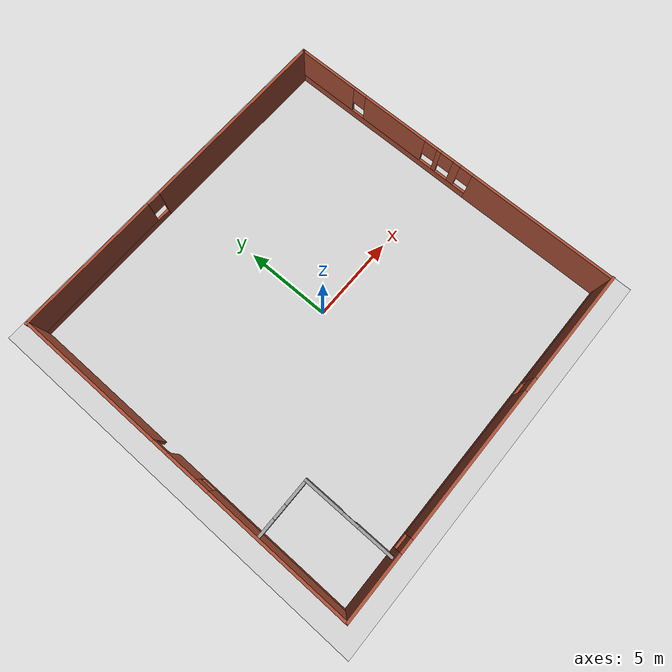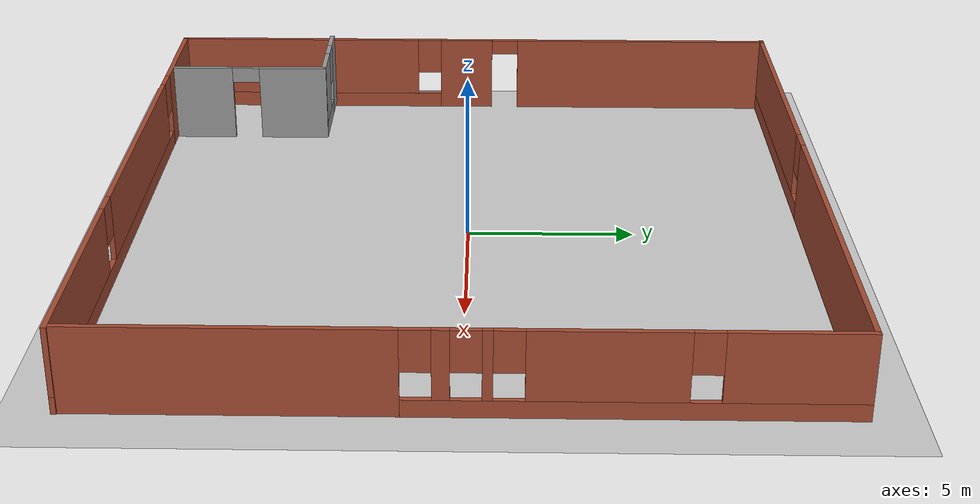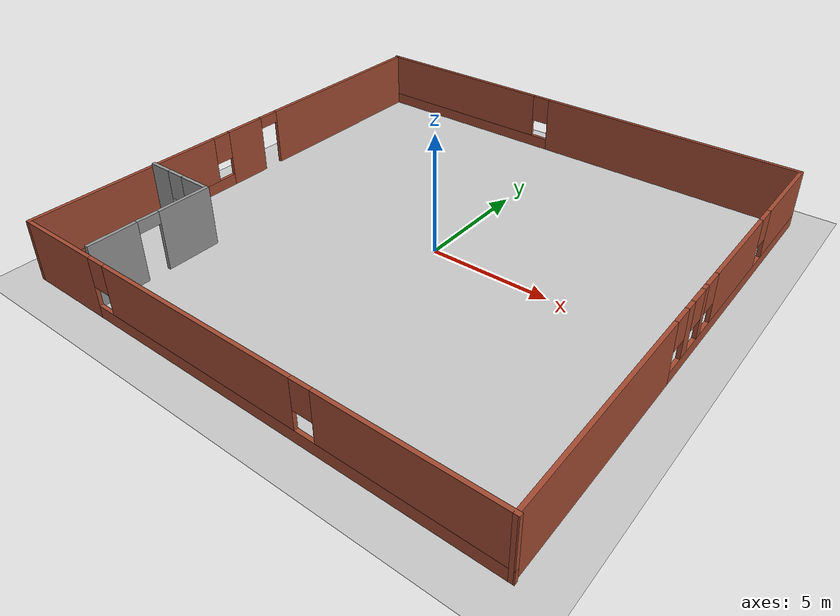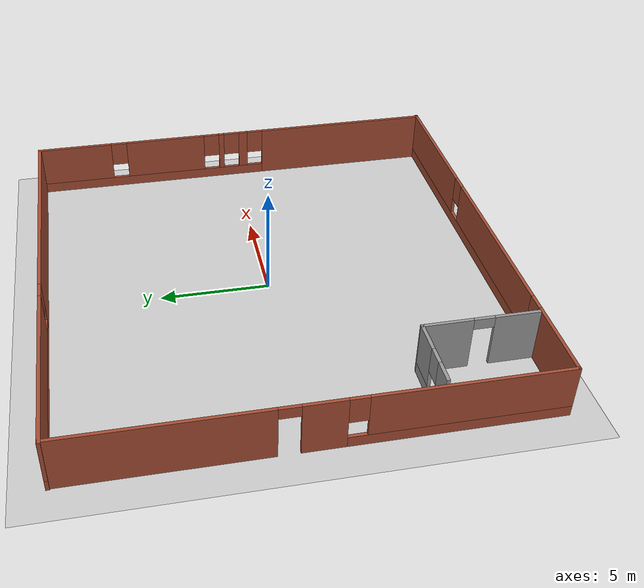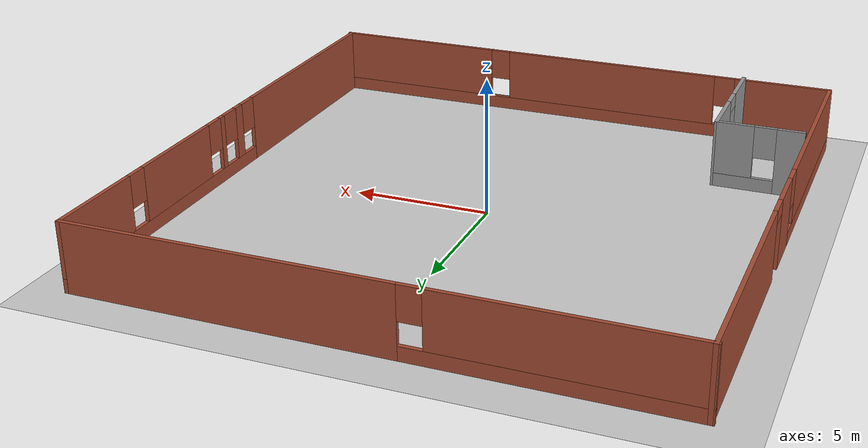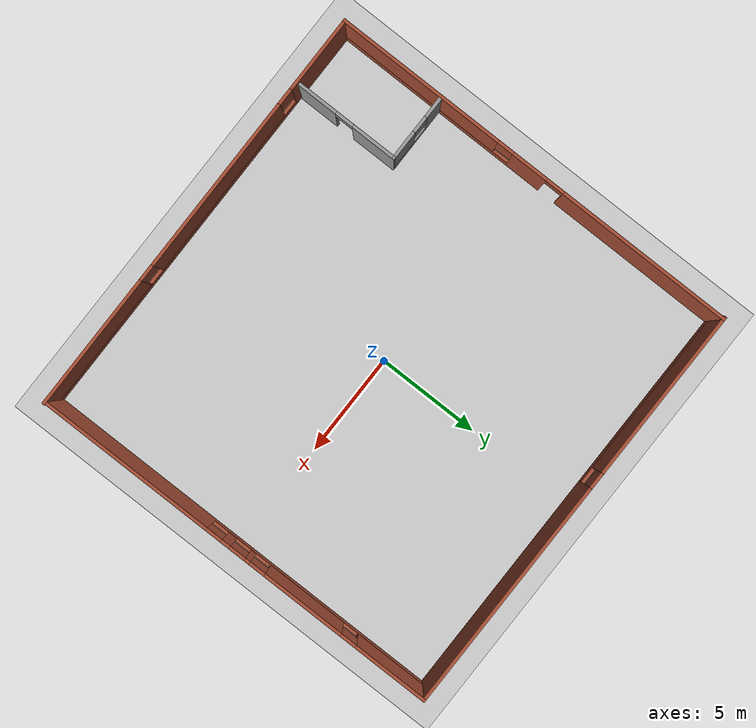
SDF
<sdf version="1.7">
 <world name="default">
  <model name="ground_plane">
   <static>1</static>
   <link name="link">
    <collision name="collision">
     <geometry><plane><normal>0 0 1</normal><size>100 100</size></plane></geometry>
     <surface>
      <contact><collide_bitmask>65535</collide_bitmask></contact>
      <friction><ode><mu>100</mu><mu2>50</mu2></ode></friction>
     </surface>
    </collision>
    <visual name="visual">
     <cast_shadows>0</cast_shadows>
     <geometry><plane><normal>0 0 1</normal><size>100 100</size></plane></geometry>
     <material>
      <script><uri>file://media/materials/scripts/gazebo.material</uri><name>Gazebo/Grey</name></script>
     </material>
    </visual>
   </link>
  </model>
  <model name="Walls">
   <pose>-0.030851 -0.016083 0 0 -0 0</pose>
   <link name="Wall_43">
    <pose>-10.226 0 0 0 -0 -1.57109</pose>
    <visual name="Wall_43_Visual_0">
     <pose>-5.91084 0 1.25 0 -0 0</pose>
     <geometry><box><size>8.66644 0.15 2.5</size></box></geometry>
     <material>
      <script><uri>file://media/materials/scripts/gazebo.material</uri><name>Gazebo/Bricks</name></script>
      <ambient>0.388235 0.270588 0.172549 1</ambient>
     </material>
     <meta><layer>0</layer></meta>
    </visual>
    <collision name="Wall_43_Collision_0">
     <geometry><box><size>8.66644 0.15 2.5</size></box></geometry>
     <pose>-5.91084 0 1.25 0 -0 0</pose>
    </collision>
    <visual name="Wall_43_Visual_1">
     <pose>0.223322 0 1.25 0 -0 0</pose>
     <geometry><box><size>1.80188 0.15 2.5</size></box></geometry>
     <material>
      <script><uri>file://media/materials/scripts/gazebo.material</uri><name>Gazebo/Bricks</name></script>
      <ambient>0.388235 0.270588 0.172549 1</ambient>
     </material>
     <meta><layer>0</layer></meta>
    </visual>
    <collision name="Wall_43_Collision_1">
     <geometry><box><size>1.80188 0.15 2.5</size></box></geometry>
     <pose>0.223322 0 1.25 0 -0 0</pose>
    </collision>
    <visual name="Wall_43_Visual_2">
     <pose>5.68416 0 0.25 0 -0 0</pose>
     <geometry><box><size>9.1198 0.15 0.5</size></box></geometry>
     <material>
      <script><uri>file://media/materials/scripts/gazebo.material</uri><name>Gazebo/Bricks</name></script>
      <ambient>0.388235 0.270588 0.172549 1</ambient>
     </material>
     <meta><layer>0</layer></meta>
    </visual>
    <collision name="Wall_43_Collision_2">
     <geometry><box><size>9.1198 0.15 0.5</size></box></geometry>
     <pose>5.68416 0 0.25 0 -0 0</pose>
    </collision>
    <visual name="Wall_43_Visual_3">
     <pose>6.08416 0 1.5 0 -0 0</pose>
     <geometry><box><size>8.3198 0.15 2</size></box></geometry>
     <material>
      <script><uri>file://media/materials/scripts/gazebo.material</uri><name>Gazebo/Bricks</name></script>
      <ambient>0.388235 0.270588 0.172549 1</ambient>
     </material>
     <meta><layer>0</layer></meta>
    </visual>
    <collision name="Wall_43_Collision_3">
     <geometry><box><size>8.3198 0.15 2</size></box></geometry>
     <pose>6.08416 0 1.5 0 -0 0</pose>
    </collision>
    <visual name="Wall_43_Visual_4">
     <pose>1.52426 0 1.9 0 -0 0</pose>
     <geometry><box><size>0.8 0.15 1.2</size></box></geometry>
     <material>
      <script><uri>file://media/materials/scripts/gazebo.material</uri><name>Gazebo/Bricks</name></script>
      <ambient>0.388235 0.270588 0.172549 1</ambient>
     </material>
     <meta><layer>0</layer></meta>
    </visual>
    <collision name="Wall_43_Collision_4">
     <geometry><box><size>0.8 0.15 1.2</size></box></geometry>
     <pose>1.52426 0 1.9 0 -0 0</pose>
    </collision>
    <visual name="Wall_43_Visual_5">
     <pose>-1.12762 0 2.25 0 -0 0</pose>
     <geometry><box><size>0.9 0.15 0.5</size></box></geometry>
     <material>
      <script><uri>file://media/materials/scripts/gazebo.material</uri><name>Gazebo/Bricks</name></script>
      <ambient>0.388235 0.270588 0.172549 1</ambient>
     </material>
     <meta><layer>0</layer></meta>
    </visual>
    <collision name="Wall_43_Collision_5">
     <geometry><box><size>0.9 0.15 0.5</size></box></geometry>
     <pose>-1.12762 0 2.25 0 -0 0</pose>
    </collision>
   </link>
   <link name="Wall_44">
    <pose>0.04349 -10.1688 0 0 -0 0</pose>
    <visual name="Wall_44_Visual_0">
     <pose>-8.4495 0 1.25 0 -0 0</pose>
     <geometry><box><size>3.70301 0.15 2.5</size></box></geometry>
     <material>
      <script><uri>file://media/materials/scripts/gazebo.material</uri><name>Gazebo/Bricks</name></script>
      <ambient>0.388235 0.270588 0.172549 1</ambient>
     </material>
     <meta><layer>0</layer></meta>
    </visual>
    <collision name="Wall_44_Collision_0">
     <geometry><box><size>3.70301 0.15 2.5</size></box></geometry>
     <pose>-8.4495 0 1.25 0 -0 0</pose>
    </collision>
    <visual name="Wall_44_Visual_1">
     <pose>1.8515 0 0.25 0 -0 0</pose>
     <geometry><box><size>16.899 0.15 0.5</size></box></geometry>
     <material>
      <script><uri>file://media/materials/scripts/gazebo.material</uri><name>Gazebo/Bricks</name></script>
      <ambient>0.388235 0.270588 0.172549 1</ambient>
     </material>
     <meta><layer>0</layer></meta>
    </visual>
    <collision name="Wall_44_Collision_1">
     <geometry><box><size>16.899 0.15 0.5</size></box></geometry>
     <pose>1.8515 0 0.25 0 -0 0</pose>
    </collision>
    <visual name="Wall_44_Visual_2">
     <pose>-1.47582 0 1.5 0 -0 0</pose>
     <geometry><box><size>8.64435 0.15 2</size></box></geometry>
     <material>
      <script><uri>file://media/materials/scripts/gazebo.material</uri><name>Gazebo/Bricks</name></script>
      <ambient>0.388235 0.270588 0.172549 1</ambient>
     </material>
     <meta><layer>0</layer></meta>
    </visual>
    <collision name="Wall_44_Collision_2">
     <geometry><box><size>8.64435 0.15 2</size></box></geometry>
     <pose>-1.47582 0 1.5 0 -0 0</pose>
    </collision>
    <visual name="Wall_44_Visual_3">
     <pose>6.97368 0 1.5 0 -0 0</pose>
     <geometry><box><size>6.65464 0.15 2</size></box></geometry>
     <material>
      <script><uri>file://media/materials/scripts/gazebo.material</uri><name>Gazebo/Bricks</name></script>
      <ambient>0.388235 0.270588 0.172549 1</ambient>
     </material>
     <meta><layer>0</layer></meta>
    </visual>
    <collision name="Wall_44_Collision_3">
     <geometry><box><size>6.65464 0.15 2</size></box></geometry>
     <pose>6.97368 0 1.5 0 -0 0</pose>
    </collision>
    <visual name="Wall_44_Visual_4">
     <pose>-6.198 0 1.9 0 -0 0</pose>
     <geometry><box><size>0.8 0.15 1.2</size></box></geometry>
     <material>
      <script><uri>file://media/materials/scripts/gazebo.material</uri><name>Gazebo/Bricks</name></script>
      <ambient>0.388235 0.270588 0.172549 1</ambient>
     </material>
     <meta><layer>0</layer></meta>
    </visual>
    <collision name="Wall_44_Collision_4">
     <geometry><box><size>0.8 0.15 1.2</size></box></geometry>
     <pose>-6.198 0 1.9 0 -0 0</pose>
    </collision>
    <visual name="Wall_44_Visual_5">
     <pose>3.24636 0 1.9 0 -0 0</pose>
     <geometry><box><size>0.8 0.15 1.2</size></box></geometry>
     <material>
      <script><uri>file://media/materials/scripts/gazebo.material</uri><name>Gazebo/Bricks</name></script>
      <ambient>0.388235 0.270588 0.172549 1</ambient>
     </material>
     <meta><layer>0</layer></meta>
    </visual>
    <collision name="Wall_44_Collision_5">
     <geometry><box><size>0.8 0.15 1.2</size></box></geometry>
     <pose>3.24636 0 1.9 0 -0 0</pose>
    </collision>
   </link>
   <link name="Wall_45">
    <pose>10.223 0 0 0 -0 1.5708</pose>
    <visual name="Wall_45_Visual_0">
     <pose>-5.87482 0 1.25 0 -0 0</pose>
     <geometry><box><size>8.73851 0.15 2.5</size></box></geometry>
     <material>
      <script><uri>file://media/materials/scripts/gazebo.material</uri><name>Gazebo/Bricks</name></script>
      <ambient>0.388235 0.270588 0.172549 1</ambient>
     </material>
     <meta><layer>0</layer></meta>
    </visual>
    <collision name="Wall_45_Collision_0">
     <geometry><box><size>8.73851 0.15 2.5</size></box></geometry>
     <pose>-5.87482 0 1.25 0 -0 0</pose>
    </collision>
    <visual name="Wall_45_Visual_1">
     <pose>4.36925 0 0.25 0 -0 0</pose>
     <geometry><box><size>11.7496 0.15 0.5</size></box></geometry>
     <material>
      <script><uri>file://media/materials/scripts/gazebo.material</uri><name>Gazebo/Bricks</name></script>
      <ambient>0.388235 0.270588 0.172549 1</ambient>
     </material>
     <meta><layer>0</layer></meta>
    </visual>
    <collision name="Wall_45_Collision_1">
     <geometry><box><size>11.7496 0.15 0.5</size></box></geometry>
     <pose>4.36925 0 0.25 0 -0 0</pose>
    </collision>
    <visual name="Wall_45_Visual_2">
     <pose>-0.477493 0 1.5 0 -0 0</pose>
     <geometry><box><size>0.456146 0.15 2</size></box></geometry>
     <material>
      <script><uri>file://media/materials/scripts/gazebo.material</uri><name>Gazebo/Bricks</name></script>
      <ambient>0.388235 0.270588 0.172549 1</ambient>
     </material>
     <meta><layer>0</layer></meta>
    </visual>
    <collision name="Wall_45_Collision_2">
     <geometry><box><size>0.456146 0.15 2</size></box></geometry>
     <pose>-0.477493 0 1.5 0 -0 0</pose>
    </collision>
    <visual name="Wall_45_Visual_3">
     <pose>0.685605 0 1.5 0 -0 0</pose>
     <geometry><box><size>0.27005 0.15 2</size></box></geometry>
     <material>
      <script><uri>file://media/materials/scripts/gazebo.material</uri><name>Gazebo/Bricks</name></script>
      <ambient>0.388235 0.270588 0.172549 1</ambient>
     </material>
     <meta><layer>0</layer></meta>
    </visual>
    <collision name="Wall_45_Collision_3">
     <geometry><box><size>0.27005 0.15 2</size></box></geometry>
     <pose>0.685605 0 1.5 0 -0 0</pose>
    </collision>
    <visual name="Wall_45_Visual_4">
     <pose>3.66314 0 1.5 0 -0 0</pose>
     <geometry><box><size>4.08501 0.15 2</size></box></geometry>
     <material>
      <script><uri>file://media/materials/scripts/gazebo.material</uri><name>Gazebo/Bricks</name></script>
      <ambient>0.388235 0.270588 0.172549 1</ambient>
     </material>
     <meta><layer>0</layer></meta>
    </visual>
    <collision name="Wall_45_Collision_4">
     <geometry><box><size>4.08501 0.15 2</size></box></geometry>
     <pose>3.66314 0 1.5 0 -0 0</pose>
    </collision>
    <visual name="Wall_45_Visual_5">
     <pose>8.37486 0 1.5 0 -0 0</pose>
     <geometry><box><size>3.73844 0.15 2</size></box></geometry>
     <material>
      <script><uri>file://media/materials/scripts/gazebo.material</uri><name>Gazebo/Bricks</name></script>
      <ambient>0.388235 0.270588 0.172549 1</ambient>
     </material>
     <meta><layer>0</layer></meta>
    </visual>
    <collision name="Wall_45_Collision_5">
     <geometry><box><size>3.73844 0.15 2</size></box></geometry>
     <pose>8.37486 0 1.5 0 -0 0</pose>
    </collision>
    <visual name="Wall_45_Visual_6">
     <pose>-1.10557 0 1.9 0 -0 0</pose>
     <geometry><box><size>0.8 0.15 1.2</size></box></geometry>
     <material>
      <script><uri>file://media/materials/scripts/gazebo.material</uri><name>Gazebo/Bricks</name></script>
      <ambient>0.388235 0.270588 0.172549 1</ambient>
     </material>
     <meta><layer>0</layer></meta>
    </visual>
    <collision name="Wall_45_Collision_6">
     <geometry><box><size>0.8 0.15 1.2</size></box></geometry>
     <pose>-1.10557 0 1.9 0 -0 0</pose>
    </collision>
    <visual name="Wall_45_Visual_7">
     <pose>0.15058 0 1.9 0 -0 0</pose>
     <geometry><box><size>0.8 0.15 1.2</size></box></geometry>
     <material>
      <script><uri>file://media/materials/scripts/gazebo.material</uri><name>Gazebo/Bricks</name></script>
      <ambient>0.388235 0.270588 0.172549 1</ambient>
     </material>
     <meta><layer>0</layer></meta>
    </visual>
    <collision name="Wall_45_Collision_7">
     <geometry><box><size>0.8 0.15 1.2</size></box></geometry>
     <pose>0.15058 0 1.9 0 -0 0</pose>
    </collision>
    <visual name="Wall_45_Visual_8">
     <pose>1.22063 0 1.9 0 -0 0</pose>
     <geometry><box><size>0.8 0.15 1.2</size></box></geometry>
     <material>
      <script><uri>file://media/materials/scripts/gazebo.material</uri><name>Gazebo/Bricks</name></script>
      <ambient>0.388235 0.270588 0.172549 1</ambient>
     </material>
     <meta><layer>0</layer></meta>
    </visual>
    <collision name="Wall_45_Collision_8">
     <geometry><box><size>0.8 0.15 1.2</size></box></geometry>
     <pose>1.22063 0 1.9 0 -0 0</pose>
    </collision>
    <visual name="Wall_45_Visual_9">
     <pose>6.10564 0 1.9 0 -0 0</pose>
     <geometry><box><size>0.8 0.15 1.2</size></box></geometry>
     <material>
      <script><uri>file://media/materials/scripts/gazebo.material</uri><name>Gazebo/Bricks</name></script>
      <ambient>0.388235 0.270588 0.172549 1</ambient>
     </material>
     <meta><layer>0</layer></meta>
    </visual>
    <collision name="Wall_45_Collision_9">
     <geometry><box><size>0.8 0.15 1.2</size></box></geometry>
     <pose>6.10564 0 1.9 0 -0 0</pose>
    </collision>
   </link>
   <link name="Wall_46">
    <pose>-0.046523 10.1688 0 0 -0 3.14159</pose>
    <visual name="Wall_46_Visual_0">
     <pose>-4.59793 0 1.25 0 -0 0</pose>
     <geometry><box><size>11.4001 0.15 2.5</size></box></geometry>
     <material>
      <script><uri>file://media/materials/scripts/gazebo.material</uri><name>Gazebo/Bricks</name></script>
      <ambient>0.388235 0.270588 0.172549 1</ambient>
     </material>
     <meta><layer>0</layer></meta>
    </visual>
    <collision name="Wall_46_Collision_0">
     <geometry><box><size>11.4001 0.15 2.5</size></box></geometry>
     <pose>-4.59793 0 1.25 0 -0 0</pose>
    </collision>
    <visual name="Wall_46_Visual_1">
     <pose>5.70004 0 0.25 0 -0 0</pose>
     <geometry><box><size>9.19585 0.15 0.5</size></box></geometry>
     <material>
      <script><uri>file://media/materials/scripts/gazebo.material</uri><name>Gazebo/Bricks</name></script>
      <ambient>0.388235 0.270588 0.172549 1</ambient>
     </material>
     <meta><layer>0</layer></meta>
    </visual>
    <collision name="Wall_46_Collision_1">
     <geometry><box><size>9.19585 0.15 0.5</size></box></geometry>
     <pose>5.70004 0 0.25 0 -0 0</pose>
    </collision>
    <visual name="Wall_46_Visual_2">
     <pose>6.10004 0 1.5 0 -0 0</pose>
     <geometry><box><size>8.39585 0.15 2</size></box></geometry>
     <material>
      <script><uri>file://media/materials/scripts/gazebo.material</uri><name>Gazebo/Bricks</name></script>
      <ambient>0.388235 0.270588 0.172549 1</ambient>
     </material>
     <meta><layer>0</layer></meta>
    </visual>
    <collision name="Wall_46_Collision_2">
     <geometry><box><size>8.39585 0.15 2</size></box></geometry>
     <pose>6.10004 0 1.5 0 -0 0</pose>
    </collision>
    <visual name="Wall_46_Visual_3">
     <pose>1.50211 0 1.9 0 -0 0</pose>
     <geometry><box><size>0.8 0.15 1.2</size></box></geometry>
     <material>
      <script><uri>file://media/materials/scripts/gazebo.material</uri><name>Gazebo/Bricks</name></script>
      <ambient>0.388235 0.270588 0.172549 1</ambient>
     </material>
     <meta><layer>0</layer></meta>
    </visual>
    <collision name="Wall_46_Collision_3">
     <geometry><box><size>0.8 0.15 1.2</size></box></geometry>
     <pose>1.50211 0 1.9 0 -0 0</pose>
    </collision>
   </link>
   <static>1</static>
  </model>
  <model name="divider">
   <pose>-7.66262 -7.11862 0.166667 0 0 -0.000295</pose>
   <link name="Wall_0">
    <pose>-0.8675 2.14258 0 0 -0 0</pose>
    <visual name="Wall_0_Visual_0">
     <pose>-1.1225 0 1.25 0 -0 0</pose>
     <geometry><box><size>1.005 0.15 2.5</size></box></geometry>
     <material>
      <script><uri>file://media/materials/scripts/gazebo.material</uri><name>Gazebo/Grey</name></script>
      <ambient>1 1 1 1</ambient>
     </material>
     <meta><layer>0</layer></meta>
    </visual>
    <collision name="Wall_0_Collision_0">
     <geometry><box><size>1.005 0.15 2.5</size></box></geometry>
     <pose>-1.1225 0 1.25 0 -0 0</pose>
    </collision>
    <visual name="Wall_0_Visual_1">
     <pose>0.5025 0 0.25 0 -0 0</pose>
     <geometry><box><size>2.245 0.15 0.5</size></box></geometry>
     <material>
      <script><uri>file://media/materials/scripts/gazebo.material</uri><name>Gazebo/Grey</name></script>
      <ambient>1 1 1 1</ambient>
     </material>
     <meta><layer>0</layer></meta>
    </visual>
    <collision name="Wall_0_Collision_1">
     <geometry><box><size>2.245 0.15 0.5</size></box></geometry>
     <pose>0.5025 0 0.25 0 -0 0</pose>
    </collision>
    <visual name="Wall_0_Visual_2">
     <pose>0.9025 0 1.5 0 -0 0</pose>
     <geometry><box><size>1.445 0.15 2</size></box></geometry>
     <material>
      <script><uri>file://media/materials/scripts/gazebo.material</uri><name>Gazebo/Grey</name></script>
      <ambient>1 1 1 1</ambient>
     </material>
     <meta><layer>0</layer></meta>
    </visual>
    <collision name="Wall_0_Collision_2">
     <geometry><box><size>1.445 0.15 2</size></box></geometry>
     <pose>0.9025 0 1.5 0 -0 0</pose>
    </collision>
    <visual name="Wall_0_Visual_3">
     <pose>-0.22 0 1.9 0 -0 0</pose>
     <geometry><box><size>0.8 0.15 1.2</size></box></geometry>
     <material>
      <script><uri>file://media/materials/scripts/gazebo.material</uri><name>Gazebo/Grey</name></script>
      <ambient>1 1 1 1</ambient>
     </material>
     <meta><layer>0</layer></meta>
    </visual>
    <collision name="Wall_0_Collision_3">
     <geometry><box><size>0.8 0.15 1.2</size></box></geometry>
     <pose>-0.22 0 1.9 0 -0 0</pose>
    </collision>
   </link>
   <link name="Wall_1">
    <pose>0.6975 -0.342417 0 0 -0 -1.56878</pose>
    <visual name="Wall_1_Visual_0">
     <pose>-1.43763 0 1.25 0 -0 0</pose>
     <geometry><box><size>2.24479 0.15 2.5</size></box></geometry>
     <material>
      <script><uri>file://media/materials/scripts/gazebo.material</uri><name>Gazebo/Grey</name></script>
      <ambient>1 1 1 1</ambient>
     </material>
     <meta><layer>0</layer></meta>
    </visual>
    <collision name="Wall_1_Collision_0">
     <geometry><box><size>2.24479 0.15 2.5</size></box></geometry>
     <pose>-1.43763 0 1.25 0 -0 0</pose>
    </collision>
    <visual name="Wall_1_Visual_1">
     <pose>1.57239 0 1.25 0 -0 0</pose>
     <geometry><box><size>1.97525 0.15 2.5</size></box></geometry>
     <material>
      <script><uri>file://media/materials/scripts/gazebo.material</uri><name>Gazebo/Grey</name></script>
      <ambient>1 1 1 1</ambient>
     </material>
     <meta><layer>0</layer></meta>
    </visual>
    <collision name="Wall_1_Collision_1">
     <geometry><box><size>1.97525 0.15 2.5</size></box></geometry>
     <pose>1.57239 0 1.25 0 -0 0</pose>
    </collision>
    <visual name="Wall_1_Visual_2">
     <pose>0.134769 0 2.25 0 -0 0</pose>
     <geometry><box><size>0.9 0.15 0.5</size></box></geometry>
     <material>
      <script><uri>file://media/materials/scripts/gazebo.material</uri><name>Gazebo/Grey</name></script>
      <ambient>1 1 1 1</ambient>
     </material>
     <meta><layer>0</layer></meta>
    </visual>
    <collision name="Wall_1_Collision_2">
     <geometry><box><size>0.9 0.15 0.5</size></box></geometry>
     <pose>0.134769 0 2.25 0 -0 0</pose>
    </collision>
   </link>
   <static>1</static>
  </model>
 </world>
</sdf>
